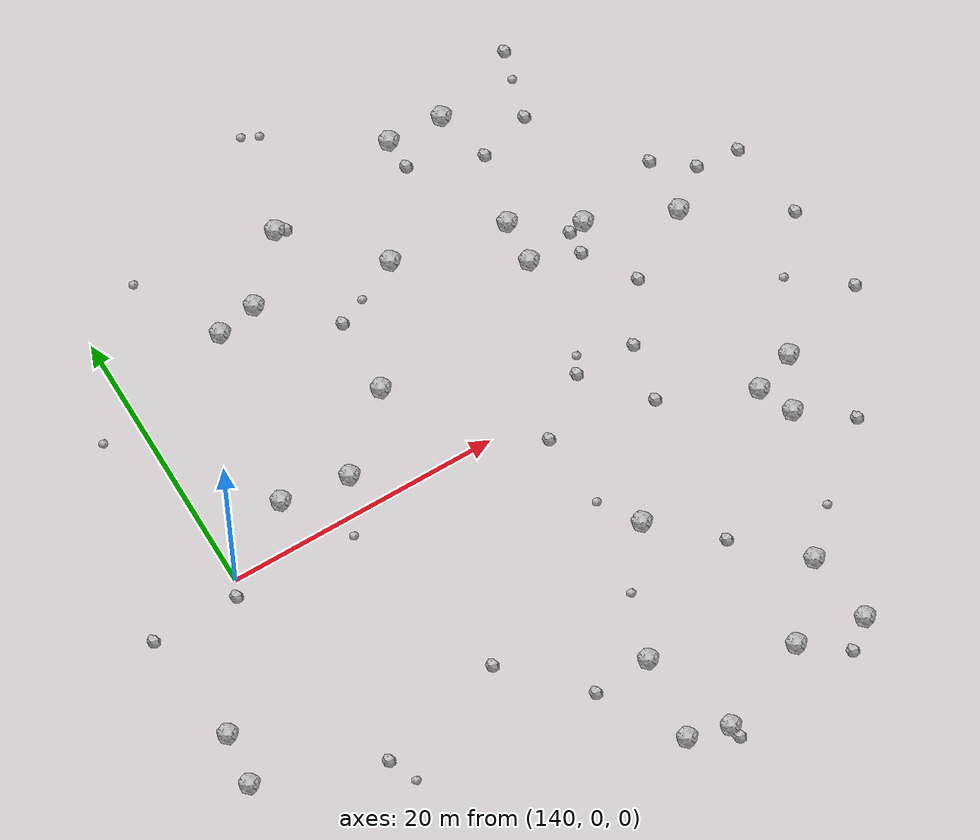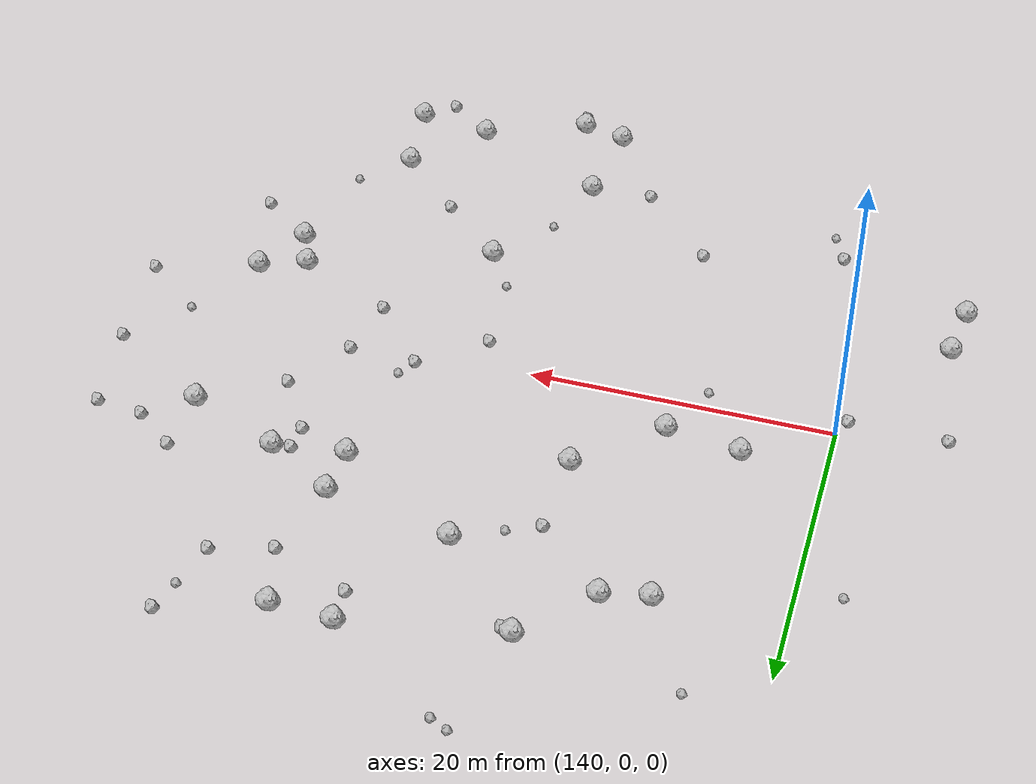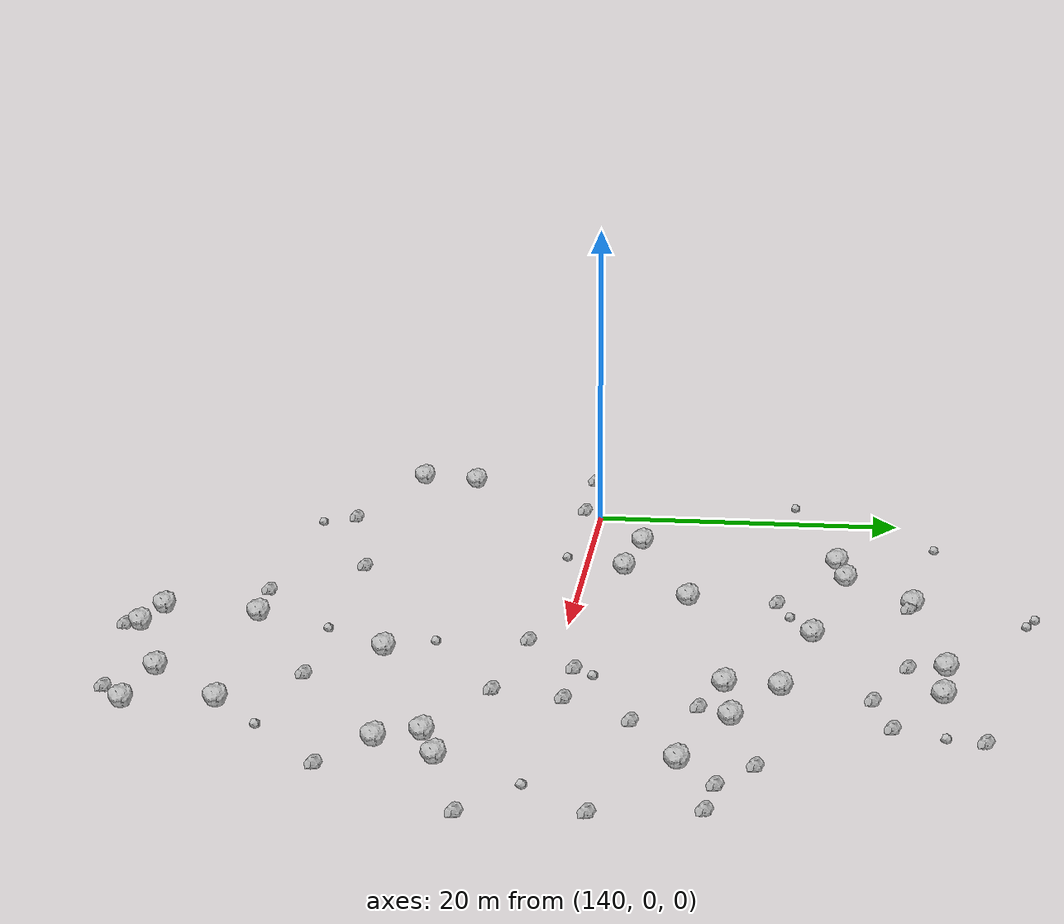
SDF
<sdf version="1.6">
 <world name="default">
  <include><uri>model://sun</uri></include>
  <model name="rock1_4_2">
   <include><uri>model://rock1</uri><pose>165.73951144337855 -10.469010858962633 0.5 0 0 0</pose></include>
  </model>
  <model name="rock1_4_3">
   <include><uri>model://rock1</uri><pose>174.38968685799475 -18.65021550856422 0.5 0 0 0</pose></include>
  </model>
  <model name="rock1_4_4">
   <include><uri>model://rock1</uri><pose>173.86314866748438 10.666024554903245 0.5 0 0 0</pose></include>
  </model>
  <model name="rock1_4_5">
   <include><uri>model://rock1</uri><pose>155.48554672715977 7.006566843376895 0.5 0 0 0</pose></include>
  </model>
  <model name="rock1_4_6">
   <include><uri>model://rock1</uri><pose>155.15994540721414 20.96969807688064 0.5 0 0 0</pose></include>
  </model>
  <model name="rock1_4_7">
   <include><uri>model://rock1</uri><pose>160.30084783056472 -25.195261123329274 0.5 0 0 0</pose></include>
  </model>
  <model name="rock1_4_8">
   <include><uri>model://rock1</uri><pose>165.39905143846588 22.846902833301364 0.5 0 0 0</pose></include>
  </model>
  <model name="rock1_4_9">
   <include><uri>model://rock1</uri><pose>148.05437270146334 16.16696936350617 0.5 0 0 0</pose></include>
  </model>
  <model name="rock1_4_10">
   <include><uri>model://rock1</uri><pose>134.08733786455534 -9.377568283922447 0.5 0 0 0</pose></include>
  </model>
  <model name="rock1_4_11">
   <include><uri>model://rock1</uri><pose>175.07283545072332 -23.97997254689576 0.5 0 0 0</pose></include>
  </model>
  <model name="rock1_4_12">
   <include><uri>model://rock1</uri><pose>160.85131388029458 14.905669246920937 0.5 0 0 0</pose></include>
  </model>
  <model name="rock1_4_13">
   <include><uri>model://rock1</uri><pose>180.8137642369598 -5.068028627270728 0.5 0 0 0</pose></include>
  </model>
  <model name="rock1_4_14">
   <include><uri>model://rock1</uri><pose>170.08216798590442 -23.24674467960375 0.5 0 0 0</pose></include>
  </model>
  <model name="rock1_4_15">
   <include><uri>model://rock1</uri><pose>180.03541442232097 8.09331465673715 0.5 0 0 0</pose></include>
  </model>
  <model name="rock1_4_16">
   <include><uri>model://rock1</uri><pose>150.41094074285792 2.546189792941057 0.5 0 0 0</pose></include>
  </model>
  <model name="rock1_4_17">
   <include><uri>model://rock1</uri><pose>163.25342386598027 -25.95853516594597 0.5 0 0 0</pose></include>
  </model>
  <model name="rock1_4_18">
   <include><uri>model://rock1</uri><pose>169.30038337765757 13.308501030788989 0.5 0 0 0</pose></include>
  </model>
  <model name="rock1_4_19">
   <include><uri>model://rock1</uri><pose>169.5019485698441 22.61482106583292 0.5 0 0 0</pose></include>
  </model>
  <model name="rock1_4_20">
   <include><uri>model://rock1</uri><pose>177.7376146046082 -6.20747291403654 0.5 0 0 0</pose></include>
  </model>
  <model name="rock1_4_21">
   <include><uri>model://rock1</uri><pose>160.9605799727467 -19.129102833545616 0.5 0 0 0</pose></include>
  </model>
  <model name="rock1_4_22">
   <include><uri>model://rock1</uri><pose>178.83788457274056 -8.739121861535914 0.5 0 0 0</pose></include>
  </model>
  <model name="rock1_4_23">
   <include><uri>model://rock1</uri><pose>145.4701741429324 3.314226808160228 0.5 0 0 0</pose></include>
  </model>
  <model name="rock1_4_24">
   <include><uri>model://rock1</uri><pose>169.12029178385745 10.04115196472118 0.5 0 0 0</pose></include>
  </model>
  <model name="rock1_4_25">
   <include><uri>model://rock1</uri><pose>151.0848312784819 16.77094082658779 0.5 0 0 0</pose></include>
  </model>
  <model name="rock1_4_26">
   <include><uri>model://rock1</uri><pose>133.58695422530195 -13.155899953156329 0.5 0 0 0</pose></include>
  </model>
  <model name="rock2_4_0">
   <include><uri>model://rock2</uri><pose>180.1967913962896 12.352465973990007 0.3 0 0 0</pose></include>
  </model>
  <model name="rock2_4_1">
   <include><uri>model://rock2</uri><pose>187.49456100377444 -2.929942447918272 0.3 0 0 0</pose></include>
  </model>
  <model name="rock2_4_2">
   <include><uri>model://rock2</uri><pose>155.65298863571627 12.598040292099519 0.3 0 0 0</pose></include>
  </model>
  <model name="rock2_4_3">
   <include><uri>model://rock2</uri><pose>139.43302091618958 -1.1144112597480351 0.3 0 0 0</pose></include>
  </model>
  <model name="rock2_4_4">
   <include><uri>model://rock2</uri><pose>156.70145947634614 -19.332881831185635 0.3 0 0 0</pose></include>
  </model>
  <model name="rock2_4_5">
   <include><uri>model://rock2</uri><pose>165.43115589808107 20.622882228531076 0.3 0 0 0</pose></include>
  </model>
  <model name="rock2_4_6">
   <include><uri>model://rock2</uri><pose>186.8830414586293 3.9250022057131346 0.3 0 0 0</pose></include>
  </model>
  <model name="rock2_4_7">
   <include><uri>model://rock2</uri><pose>151.7422690750155 -14.132349904095287 0.3 0 0 0</pose></include>
  </model>
  <model name="rock2_4_8">
   <include><uri>model://rock2</uri><pose>174.45935406352984 19.715691156326983 0.3 0 0 0</pose></include>
  </model>
  <model name="rock2_4_9">
   <include><uri>model://rock2</uri><pose>155.82570378155282 20.727187195137404 0.3 0 0 0</pose></include>
  </model>
  <model name="rock2_4_10">
   <include><uri>model://rock2</uri><pose>173.08771591922425 -25.54936001124753 0.3 0 0 0</pose></include>
  </model>
  <model name="rock2_4_11">
   <include><uri>model://rock2</uri><pose>142.38103148455107 -16.41361919079467 0.3 0 0 0</pose></include>
  </model>
  <model name="rock2_4_12">
   <include><uri>model://rock2</uri><pose>163.4342131622663 -2.020038858270624 0.3 0 0 0</pose></include>
  </model>
  <model name="rock2_4_13">
   <include><uri>model://rock2</uri><pose>167.55141605731464 1.1582600401212488 0.3 0 0 0</pose></include>
  </model>
  <model name="rock2_4_14">
   <include><uri>model://rock2</uri><pose>172.63347733681053 10.524939769900442 0.3 0 0 0</pose></include>
  </model>
  <model name="rock2_4_15">
   <include><uri>model://rock2</uri><pose>182.8330166403509 10.342447626679053 0.3 0 0 0</pose></include>
  </model>
  <model name="rock2_4_16">
   <include><uri>model://rock2</uri><pose>182.34052720471118 -11.358024598643418 0.3 0 0 0</pose></include>
  </model>
  <model name="rock2_4_17">
   <include><uri>model://rock2</uri><pose>171.18282369789904 -3.20021244525606 0.3 0 0 0</pose></include>
  </model>
  <model name="rock2_4_18">
   <include><uri>model://rock2</uri><pose>172.51321669941603 8.790562585552195 0.3 0 0 0</pose></include>
  </model>
  <model name="rock2_4_19">
   <include><uri>model://rock2</uri><pose>185.969984826678 9.977490210531855 0.3 0 0 0</pose></include>
  </model>
  <model name="rock2_4_20">
   <include><uri>model://rock2</uri><pose>172.0183354199488 1.0306525370241673 0.3 0 0 0</pose></include>
  </model>
  <model name="rock2_4_21">
   <include><uri>model://rock2</uri><pose>170.0003057133079 -14.424591736419142 0.3 0 0 0</pose></include>
  </model>
  <model name="rock2_4_22">
   <include><uri>model://rock2</uri><pose>170.56996400563006 18.598461954164883 0.3 0 0 0</pose></include>
  </model>
  <model name="rock2_4_23">
   <include><uri>model://rock2</uri><pose>133.05429497916202 -1.0770238505905354 0.3 0 0 0</pose></include>
  </model>
  <model name="rock2_4_24">
   <include><uri>model://rock2</uri><pose>174.85711541865533 5.11537716934491 0.3 0 0 0</pose></include>
  </model>
  <model name="rock2_4_25">
   <include><uri>model://rock2</uri><pose>175.8598695044989 24.80770840692729 0.3 0 0 0</pose></include>
  </model>
  <model name="rock2_4_26">
   <include><uri>model://rock2</uri><pose>163.3629630786278 -26.862416355523198 0.3 0 0 0</pose></include>
  </model>
  <model name="rock3_4_0">
   <include><uri>model://rock3</uri><pose>162.45035829571916 -14.444454247350196 0.2 0 0 0</pose></include>
  </model>
  <model name="rock3_4_1">
   <include><uri>model://rock3</uri><pose>143.25133352652728 -18.536951379270487 0.2 0 0 0</pose></include>
  </model>
  <model name="rock3_4_2">
   <include><uri>model://rock3</uri><pose>148.4537653600283 -1.3505418916533856 0.2 0 0 0</pose></include>
  </model>
  <model name="rock3_4_3">
   <include><uri>model://rock3</uri><pose>144.70494504456147 22.4503356215032 0.2 0 0 0</pose></include>
  </model>
  <model name="rock3_4_4">
   <include><uri>model://rock3</uri><pose>157.81336043692139 27.84400320258085 0.2 0 0 0</pose></include>
  </model>
  <model name="rock3_4_5">
   <include><uri>model://rock3</uri><pose>137.147338663731 13.158263171029283 0.2 0 0 0</pose></include>
  </model>
  <model name="rock3_4_6">
   <include><uri>model://rock3</uri><pose>168.2518905731803 2.3278817294589658 0.2 0 0 0</pose></include>
  </model>
  <model name="rock3_4_7">
   <include><uri>model://rock3</uri><pose>177.21420438194895 -15.737012295997845 0.2 0 0 0</pose></include>
  </model>
  <model name="rock3_4_8">
   <include><uri>model://rock3</uri><pose>175.23597091335049 22.63994021506867 0.2 0 0 0</pose></include>
  </model>
  <model name="rock3_4_9">
   <include><uri>model://rock3</uri><pose>157.71919796250606 13.45386731684119 0.2 0 0 0</pose></include>
  </model>
  <model name="rock3_4_10">
   <include><uri>model://rock3</uri><pose>183.59112378724586 0.07816568054167661 0.2 0 0 0</pose></include>
  </model>
  <model name="rock3_4_11">
   <include><uri>model://rock3</uri><pose>163.86379219632263 -7.6038923816203265 0.2 0 0 0</pose></include>
  </model>
  <model name="rock3_4_12">
   <include><uri>model://rock3</uri><pose>156.65924842500982 28.40778003940789 0.2 0 0 0</pose></include>
  </model>
 </world>
</sdf>
